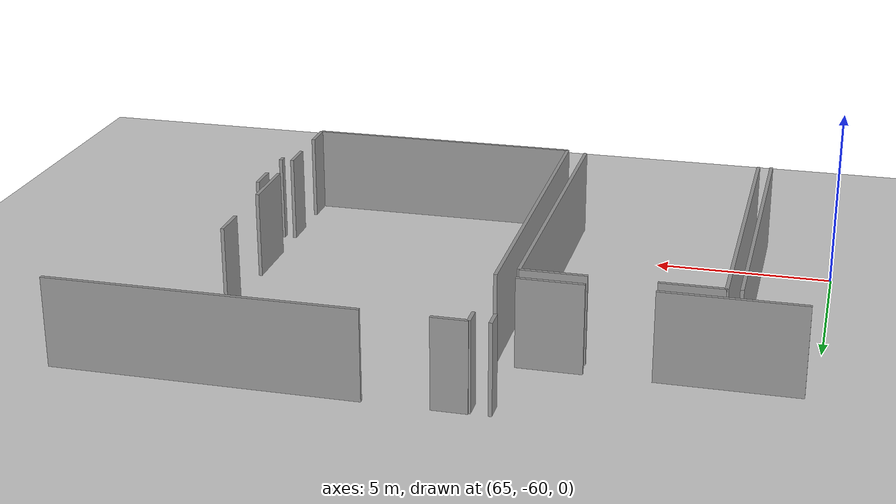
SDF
<sdf version="1.6">
 <world name="default">
  <model name="ground_plane">
   <static>1</static>
   <link name="link">
    <collision name="collision">
     <geometry><plane><normal>0 0 1</normal><size>100 100</size></plane></geometry>
     <surface><friction><ode><mu>100</mu><mu2>50</mu2></ode></friction></surface>
    </collision>
    <visual name="visual">
     <cast_shadows>0</cast_shadows>
     <geometry><plane><normal>0 0 1</normal><size>100 100</size></plane></geometry>
     <material>
      <script><uri>file://media/materials/scripts/gazebo.material</uri><name>Gazebo/Grey</name></script>
     </material>
    </visual>
   </link>
  </model>
  <model name="0510045904_A_40_1_102">
   <static>1</static>
   <link name="Wall_625">
    <collision name="Wall_625_Collision">
     <geometry><box><size>10.0041895718 0.1 2.5</size></box></geometry>
     <pose>5.00209478589 0 1.25 0 0 0</pose>
    </collision>
    <visual name="Wall_625_Visual">
     <pose>5.00209478589 0 1.25 0 0 0</pose>
     <geometry><box><size>10.0041895718 0.1 2.5</size></box></geometry>
     <material>
      <script><uri>file://media/materials/scripts/gazebo.material</uri><name>Gazebo/Grey</name></script>
      <ambient>1 1 1 1</ambient>
     </material>
    </visual>
    <pose>157.494128252 -124.897990275 0 0 0 1.57079632679</pose>
   </link>
   <link name="Wall_626">
    <collision name="Wall_626_Collision">
     <geometry><box><size>0.511381669989 0.1 2.5</size></box></geometry>
     <pose>0.255690834994 0 1.25 0 0 0</pose>
    </collision>
    <visual name="Wall_626_Visual">
     <pose>0.255690834994 0 1.25 0 0 0</pose>
     <geometry><box><size>0.511381669989 0.1 2.5</size></box></geometry>
     <material>
      <script><uri>file://media/materials/scripts/gazebo.material</uri><name>Gazebo/Grey</name></script>
      <ambient>1 1 1 1</ambient>
     </material>
    </visual>
    <pose>157.494128252 -112.54027702 0 0 0 1.57079632679</pose>
   </link>
   <link name="Wall_627">
    <collision name="Wall_627_Collision">
     <geometry><box><size>0.960554546955 0.1 2.5</size></box></geometry>
     <pose>0.480277273477 0 1.25 0 0 0</pose>
    </collision>
    <visual name="Wall_627_Visual">
     <pose>0.480277273477 0 1.25 0 0 0</pose>
     <geometry><box><size>0.960554546955 0.1 2.5</size></box></geometry>
     <material>
      <script><uri>file://media/materials/scripts/gazebo.material</uri><name>Gazebo/Grey</name></script>
      <ambient>1 1 1 1</ambient>
     </material>
    </visual>
    <pose>157.494128252 -112.02889535 0 0 0 0.0</pose>
   </link>
   <link name="Wall_628">
    <collision name="Wall_628_Collision">
     <geometry><box><size>8.40935924943 0.1 2.5</size></box></geometry>
     <pose>4.20467962472 0 1.25 0 0 0</pose>
    </collision>
    <visual name="Wall_628_Visual">
     <pose>4.20467962472 0 1.25 0 0 0</pose>
     <geometry><box><size>8.40935924943 0.1 2.5</size></box></geometry>
     <material>
      <script><uri>file://media/materials/scripts/gazebo.material</uri><name>Gazebo/Grey</name></script>
      <ambient>1 1 1 1</ambient>
     </material>
    </visual>
    <pose>160.224713395 -112.02889535 0 0 0 0.0</pose>
   </link>
   <link name="Wall_631">
    <collision name="Wall_631_Collision">
     <geometry><box><size>0.99838764965 0.1 2.5</size></box></geometry>
     <pose>0.499193824825 0 1.25 0 0 0</pose>
    </collision>
    <visual name="Wall_631_Visual">
     <pose>0.499193824825 0 1.25 0 0 0</pose>
     <geometry><box><size>0.99838764965 0.1 2.5</size></box></geometry>
     <material>
      <script><uri>file://media/materials/scripts/gazebo.material</uri><name>Gazebo/Grey</name></script>
      <ambient>1 1 1 1</ambient>
     </material>
    </visual>
    <pose>165.370269275 -116.21440451 0 0 0 -1.57079632679</pose>
   </link>
   <link name="Wall_632">
    <collision name="Wall_632_Collision">
     <geometry><box><size>1.85458377239 0.1 2.5</size></box></geometry>
     <pose>0.927291886196 0 1.25 0 0 0</pose>
    </collision>
    <visual name="Wall_632_Visual">
     <pose>0.927291886196 0 1.25 0 0 0</pose>
     <geometry><box><size>1.85458377239 0.1 2.5</size></box></geometry>
     <material>
      <script><uri>file://media/materials/scripts/gazebo.material</uri><name>Gazebo/Grey</name></script>
      <ambient>1 1 1 1</ambient>
     </material>
    </visual>
    <pose>165.370269275 -118.939911384 0 0 0 -1.57079632679</pose>
   </link>
   <link name="Wall_633">
    <collision name="Wall_633_Collision">
     <geometry><box><size>0.897837927051 0.1 2.5</size></box></geometry>
     <pose>0.448918963525 0 1.25 0 0 0</pose>
    </collision>
    <visual name="Wall_633_Visual">
     <pose>0.448918963525 0 1.25 0 0 0</pose>
     <geometry><box><size>0.897837927051 0.1 2.5</size></box></geometry>
     <material>
      <script><uri>file://media/materials/scripts/gazebo.material</uri><name>Gazebo/Grey</name></script>
      <ambient>1 1 1 1</ambient>
     </material>
    </visual>
    <pose>165.370269275 -121.976462224 0 0 0 -1.57079632679</pose>
   </link>
   <link name="Wall_634">
    <collision name="Wall_634_Collision">
     <geometry><box><size>0.868130054464 0.1 2.5</size></box></geometry>
     <pose>0.434065027232 0 1.25 0 0 0</pose>
    </collision>
    <visual name="Wall_634_Visual">
     <pose>0.434065027232 0 1.25 0 0 0</pose>
     <geometry><box><size>0.868130054464 0.1 2.5</size></box></geometry>
     <material>
      <script><uri>file://media/materials/scripts/gazebo.material</uri><name>Gazebo/Grey</name></script>
      <ambient>1 1 1 1</ambient>
     </material>
    </visual>
    <pose>165.370269275 -124.000406262 0 0 0 -1.57079632679</pose>
   </link>
   <link name="Wall_635">
    <collision name="Wall_635_Collision">
     <geometry><box><size>7.87619609699 0.1 2.5</size></box></geometry>
     <pose>3.93809804849 0 1.25 0 0 0</pose>
    </collision>
    <visual name="Wall_635_Visual">
     <pose>3.93809804849 0 1.25 0 0 0</pose>
     <geometry><box><size>7.87619609699 0.1 2.5</size></box></geometry>
     <material>
      <script><uri>file://media/materials/scripts/gazebo.material</uri><name>Gazebo/Grey</name></script>
      <ambient>1 1 1 1</ambient>
     </material>
    </visual>
    <pose>165.370269275 -124.868536316 0 0 0 -3.13785302758</pose>
   </link>
   <link name="Wall_641">
    <collision name="Wall_641_Collision">
     <geometry><box><size>0.219635126385 0.1 2.5</size></box></geometry>
     <pose>0.109817563193 0 1.25 0 0 0</pose>
    </collision>
    <visual name="Wall_641_Visual">
     <pose>0.109817563193 0 1.25 0 0 0</pose>
     <geometry><box><size>0.219635126385 0.1 2.5</size></box></geometry>
     <material>
      <script><uri>file://media/materials/scripts/gazebo.material</uri><name>Gazebo/Grey</name></script>
      <ambient>1 1 1 1</ambient>
     </material>
    </visual>
    <pose>165.718384603 -122.169182526 0 0 0 1.57079632679</pose>
   </link>
   <link name="Wall_642">
    <collision name="Wall_642_Collision">
     <geometry><box><size>0.834867393705 0.1 2.5</size></box></geometry>
     <pose>0.417433696853 0 1.25 0 0 0</pose>
    </collision>
    <visual name="Wall_642_Visual">
     <pose>0.417433696853 0 1.25 0 0 0</pose>
     <geometry><box><size>0.834867393705 0.1 2.5</size></box></geometry>
     <material>
      <script><uri>file://media/materials/scripts/gazebo.material</uri><name>Gazebo/Grey</name></script>
      <ambient>1 1 1 1</ambient>
     </material>
    </visual>
    <pose>165.718384603 -120.778244696 0 0 0 1.57079632679</pose>
   </link>
   <link name="Wall_663">
    <collision name="Wall_663_Collision">
     <geometry><box><size>0.545913897952 0.1 2.5</size></box></geometry>
     <pose>0.272956948976 0 1.25 0 0 0</pose>
    </collision>
    <visual name="Wall_663_Visual">
     <pose>0.272956948976 0 1.25 0 0 0</pose>
     <geometry><box><size>0.545913897952 0.1 2.5</size></box></geometry>
     <material>
      <script><uri>file://media/materials/scripts/gazebo.material</uri><name>Gazebo/Grey</name></script>
      <ambient>1 1 1 1</ambient>
     </material>
    </visual>
    <pose>156.951769142 -112.001472698 0 0 0 -1.57079632679</pose>
   </link>
   <link name="Wall_664">
    <collision name="Wall_664_Collision">
     <geometry><box><size>1.78704279711 0.1 2.5</size></box></geometry>
     <pose>0.893521398555 0 1.25 0 0 0</pose>
    </collision>
    <visual name="Wall_664_Visual">
     <pose>0.893521398555 0 1.25 0 0 0</pose>
     <geometry><box><size>1.78704279711 0.1 2.5</size></box></geometry>
     <material>
      <script><uri>file://media/materials/scripts/gazebo.material</uri><name>Gazebo/Grey</name></script>
      <ambient>1 1 1 1</ambient>
     </material>
    </visual>
    <pose>156.951769142 -114.833115391 0 0 0 3.14159265359</pose>
   </link>
   <link name="Wall_665">
    <collision name="Wall_665_Collision">
     <geometry><box><size>3.813525969 0.1 2.5</size></box></geometry>
     <pose>1.9067629845 0 1.25 0 0 0</pose>
    </collision>
    <visual name="Wall_665_Visual">
     <pose>1.9067629845 0 1.25 0 0 0</pose>
     <geometry><box><size>3.813525969 0.1 2.5</size></box></geometry>
     <material>
      <script><uri>file://media/materials/scripts/gazebo.material</uri><name>Gazebo/Grey</name></script>
      <ambient>1 1 1 1</ambient>
     </material>
    </visual>
    <pose>153.392156614 -114.833115391 0 0 0 3.14159265359</pose>
   </link>
   <link name="Wall_812">
    <collision name="Wall_812_Collision">
     <geometry><box><size>9.38260968832 0.1 2.5</size></box></geometry>
     <pose>4.69130484416 0 1.25 0 0 0</pose>
    </collision>
    <visual name="Wall_812_Visual">
     <pose>4.69130484416 0 1.25 0 0 0</pose>
     <geometry><box><size>9.38260968832 0.1 2.5</size></box></geometry>
     <material>
      <script><uri>file://media/materials/scripts/gazebo.material</uri><name>Gazebo/Grey</name></script>
      <ambient>1 1 1 1</ambient>
     </material>
    </visual>
    <pose>151.323269897 -115.402389325 0 0 0 -1.57057982972</pose>
   </link>
   <link name="Wall_813">
    <collision name="Wall_813_Collision">
     <geometry><box><size>9.350108548 0.1 2.5</size></box></geometry>
     <pose>4.675054274 0 1.25 0 0 0</pose>
    </collision>
    <visual name="Wall_813_Visual">
     <pose>4.675054274 0 1.25 0 0 0</pose>
     <geometry><box><size>9.350108548 0.1 2.5</size></box></geometry>
     <material>
      <script><uri>file://media/materials/scripts/gazebo.material</uri><name>Gazebo/Grey</name></script>
      <ambient>1 1 1 1</ambient>
     </material>
    </visual>
    <pose>151.701854838 -124.746150037 0 0 0 1.57079632679</pose>
   </link>
   <link name="Wall_814">
    <collision name="Wall_814_Collision">
     <geometry><box><size>1.7217870428 0.1 2.5</size></box></geometry>
     <pose>0.860893521399 0 1.25 0 0 0</pose>
    </collision>
    <visual name="Wall_814_Visual">
     <pose>0.860893521399 0 1.25 0 0 0</pose>
     <geometry><box><size>1.7217870428 0.1 2.5</size></box></geometry>
     <material>
      <script><uri>file://media/materials/scripts/gazebo.material</uri><name>Gazebo/Grey</name></script>
      <ambient>1 1 1 1</ambient>
     </material>
    </visual>
    <pose>151.701854838 -115.396041489 0 0 0 0.0</pose>
   </link>
   <link name="Wall_815">
    <collision name="Wall_815_Collision">
     <geometry><box><size>1.78628105679 0.1 2.5</size></box></geometry>
     <pose>0.893140528394 0 1.25 0 0 0</pose>
    </collision>
    <visual name="Wall_815_Visual">
     <pose>0.893140528394 0 1.25 0 0 0</pose>
     <geometry><box><size>1.78628105679 0.1 2.5</size></box></geometry>
     <material>
      <script><uri>file://media/materials/scripts/gazebo.material</uri><name>Gazebo/Grey</name></script>
      <ambient>1 1 1 1</ambient>
     </material>
    </visual>
    <pose>155.198750746 -115.396041489 0 0 0 0.0</pose>
   </link>
   <link name="Wall_816">
    <collision name="Wall_816_Collision">
     <geometry><box><size>9.35036738112 0.1 2.5</size></box></geometry>
     <pose>4.67518369056 0 1.25 0 0 0</pose>
    </collision>
    <visual name="Wall_816_Visual">
     <pose>4.67518369056 0 1.25 0 0 0</pose>
     <geometry><box><size>9.35036738112 0.1 2.5</size></box></geometry>
     <material>
      <script><uri>file://media/materials/scripts/gazebo.material</uri><name>Gazebo/Grey</name></script>
      <ambient>1 1 1 1</ambient>
     </material>
    </visual>
    <pose>156.985031803 -115.396041489 0 0 0 -1.57823698896</pose>
   </link>
   <pose>-84.3 62.4479902751 0 0 0 0</pose>
  </model>
 </world>
</sdf>
